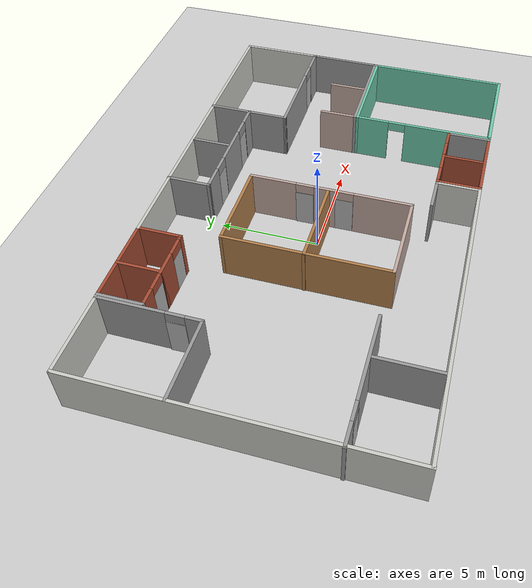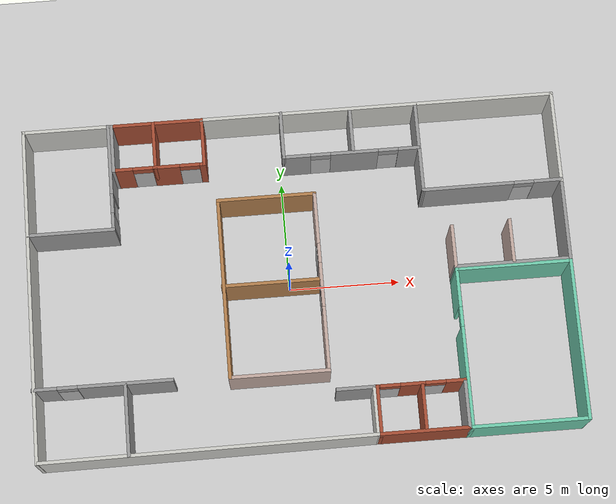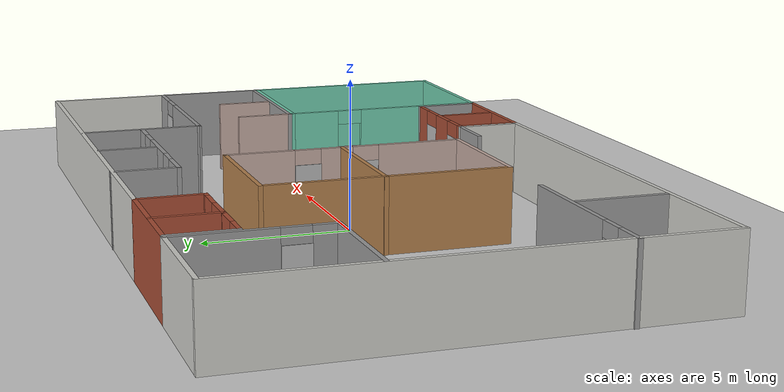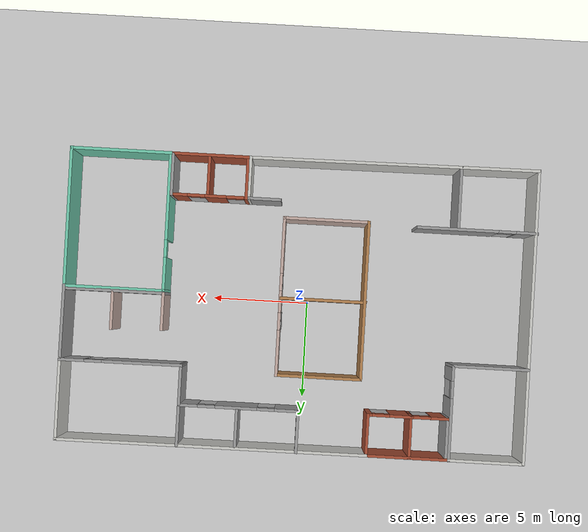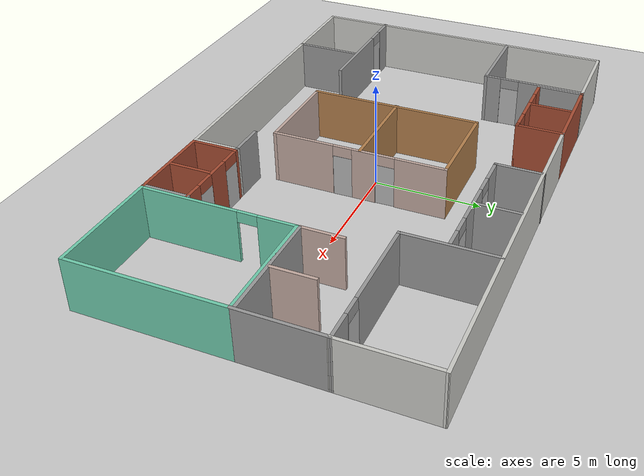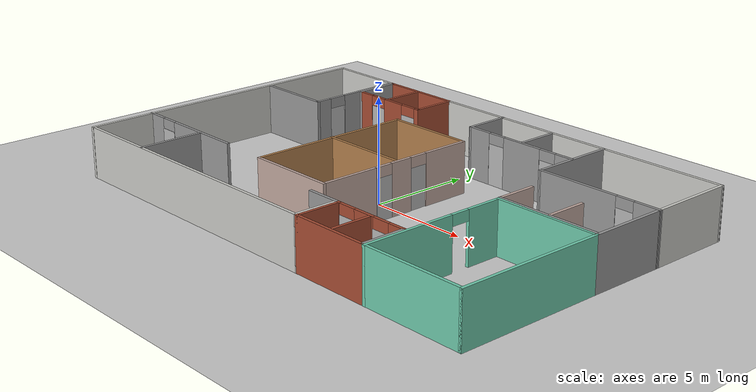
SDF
<sdf version="1.7">
 <world name="default">
  <light name="sun" type="directional">
   <pose>0 0 10 0 -0 0</pose>
   <diffuse>0.8 0.8 0.8 1</diffuse>
   <specular>0.2 0.2 0.2 1</specular>
   <attenuation>
    <range>1000</range>
    <constant>0.9</constant>
    <linear>0.01</linear>
    <quadratic>0.001</quadratic>
   </attenuation>
   <direction>-0.5 0.1 -0.9</direction>
   <spot><inner_angle>0</inner_angle><outer_angle>0</outer_angle><falloff>0</falloff></spot>
  </light>
  <model name="ground_plane">
   <static>1</static>
   <link name="link">
    <collision name="collision">
     <geometry><plane><normal>0 0 1</normal><size>100 100</size></plane></geometry>
     <surface>
      <contact><collide_bitmask>65535</collide_bitmask></contact>
      <friction><ode><mu>100</mu><mu2>50</mu2></ode></friction>
     </surface>
    </collision>
    <visual name="visual">
     <cast_shadows>0</cast_shadows>
     <geometry><plane><normal>0 0 1</normal><size>100 100</size></plane></geometry>
     <material>
      <script><uri>file://media/materials/scripts/gazebo.material</uri><name>Gazebo/Grey</name></script>
     </material>
    </visual>
   </link>
  </model>
  <gravity>0 0 -9.8</gravity>
  <magnetic_field>6e-06 2.3e-05 -4.2e-05</magnetic_field>
  <atmosphere type="adiabatic"/>
  <physics type="ode">
   <max_step_size>0.001</max_step_size>
   <real_time_factor>1</real_time_factor>
   <real_time_update_rate>1000</real_time_update_rate>
  </physics>
  <scene><ambient>0.4 0.4 0.4 1</ambient><background>0.7 0.7 0.7 1</background><shadows>1</shadows></scene>
  <spherical_coordinates>
   <surface_model>EARTH_WGS84</surface_model>
   <latitude_deg>0</latitude_deg>
   <longitude_deg>0</longitude_deg>
   <elevation>0</elevation>
   <heading_deg>0</heading_deg>
  </spherical_coordinates>
  <model name="office_building">
   <pose>0.494631 0.126876 0 0 -0 0</pose>
   <link name="Wall_1">
    <collision name="Wall_1_Collision">
     <geometry><box><size>7.25 0.15 2.5</size></box></geometry>
     <pose>0 0 1.25 0 -0 0</pose>
    </collision>
    <visual name="Wall_1_Visual">
     <pose>0 0 1.25 0 -0 0</pose>
     <geometry><box><size>7.25 0.15 2.5</size></box></geometry>
     <material>
      <script><uri>file://media/materials/scripts/gazebo.material</uri><name>Gazebo/Grey</name></script>
      <ambient>0.435294 0.796078 0.67451 1</ambient>
     </material>
     <meta><layer>0</layer></meta>
    </visual>
    <pose>12.051 -3.89015 0 0 -0 1.5708</pose>
   </link>
   <link name="Wall_10">
    <collision name="Wall_10_Collision">
     <geometry><box><size>2.25 0.15 2.5</size></box></geometry>
     <pose>0 0 1.25 0 -0 0</pose>
    </collision>
    <visual name="Wall_10_Visual">
     <pose>0 0 1.25 0 -0 0</pose>
     <geometry><box><size>2.25 0.15 2.5</size></box></geometry>
     <material>
      <script><uri>file://media/materials/scripts/gazebo.material</uri><name>Gazebo/Grey</name></script>
      <ambient>1 1 1 1</ambient>
     </material>
     <meta><layer>0</layer></meta>
    </visual>
    <pose>6.8099 -6.38677 0 0 -0 -1.5708</pose>
   </link>
   <link name="Wall_12">
    <pose>4.8849 -5.33677 0 0 -0 3.14159</pose>
    <visual name="Wall_12_Visual_0">
     <pose>-1.5468 0 1.25 0 -0 0</pose>
     <geometry><box><size>0.906408 0.15 2.5</size></box></geometry>
     <material>
      <script><uri>file://media/materials/scripts/gazebo.material</uri><name>Gazebo/Bricks</name></script>
      <ambient>1 1 1 1</ambient>
     </material>
     <meta><layer>0</layer></meta>
    </visual>
    <collision name="Wall_12_Collision_0">
     <geometry><box><size>0.906408 0.15 2.5</size></box></geometry>
     <pose>-1.5468 0 1.25 0 -0 0</pose>
    </collision>
    <visual name="Wall_12_Visual_1">
     <pose>0.357767 0 1.25 0 -0 0</pose>
     <geometry><box><size>1.10272 0.15 2.5</size></box></geometry>
     <material>
      <script><uri>file://media/materials/scripts/gazebo.material</uri><name>Gazebo/Bricks</name></script>
      <ambient>1 1 1 1</ambient>
     </material>
     <meta><layer>0</layer></meta>
    </visual>
    <collision name="Wall_12_Collision_1">
     <geometry><box><size>1.10272 0.15 2.5</size></box></geometry>
     <pose>0.357767 0 1.25 0 -0 0</pose>
    </collision>
    <visual name="Wall_12_Visual_2">
     <pose>1.90456 0 1.25 0 -0 0</pose>
     <geometry><box><size>0.190874 0.15 2.5</size></box></geometry>
     <material>
      <script><uri>file://media/materials/scripts/gazebo.material</uri><name>Gazebo/Bricks</name></script>
      <ambient>1 1 1 1</ambient>
     </material>
     <meta><layer>0</layer></meta>
    </visual>
    <collision name="Wall_12_Collision_2">
     <geometry><box><size>0.190874 0.15 2.5</size></box></geometry>
     <pose>1.90456 0 1.25 0 -0 0</pose>
    </collision>
    <visual name="Wall_12_Visual_3">
     <pose>-0.643592 0 2.25 0 -0 0</pose>
     <geometry><box><size>0.9 0.15 0.5</size></box></geometry>
     <material>
      <script><uri>file://media/materials/scripts/gazebo.material</uri><name>Gazebo/Bricks</name></script>
      <ambient>1 1 1 1</ambient>
     </material>
     <meta><layer>0</layer></meta>
    </visual>
    <collision name="Wall_12_Collision_3">
     <geometry><box><size>0.9 0.15 0.5</size></box></geometry>
     <pose>-0.643592 0 2.25 0 -0 0</pose>
    </collision>
    <visual name="Wall_12_Visual_4">
     <pose>1.35913 0 2.25 0 -0 0</pose>
     <geometry><box><size>0.9 0.15 0.5</size></box></geometry>
     <material>
      <script><uri>file://media/materials/scripts/gazebo.material</uri><name>Gazebo/Bricks</name></script>
      <ambient>1 1 1 1</ambient>
     </material>
     <meta><layer>0</layer></meta>
    </visual>
    <collision name="Wall_12_Collision_4">
     <geometry><box><size>0.9 0.15 0.5</size></box></geometry>
     <pose>1.35913 0 2.25 0 -0 0</pose>
    </collision>
   </link>
   <link name="Wall_13">
    <collision name="Wall_13_Collision">
     <geometry><box><size>2.25 0.15 2.5</size></box></geometry>
     <pose>0 0 1.25 0 -0 0</pose>
    </collision>
    <visual name="Wall_13_Visual">
     <pose>0 0 1.25 0 -0 0</pose>
     <geometry><box><size>2.25 0.15 2.5</size></box></geometry>
     <material>
      <script><uri>file://media/materials/scripts/gazebo.material</uri><name>Gazebo/Bricks</name></script>
      <ambient>1 1 1 1</ambient>
     </material>
     <meta><layer>0</layer></meta>
    </visual>
    <pose>2.9599 -6.38677 0 0 -0 -1.5708</pose>
   </link>
   <link name="Wall_14">
    <collision name="Wall_14_Collision">
     <geometry><box><size>4 0.15 2.5</size></box></geometry>
     <pose>0 0 1.25 0 -0 0</pose>
    </collision>
    <visual name="Wall_14_Visual">
     <pose>0 0 1.25 0 -0 0</pose>
     <geometry><box><size>4 0.15 2.5</size></box></geometry>
     <material>
      <script><uri>file://media/materials/scripts/gazebo.material</uri><name>Gazebo/Bricks</name></script>
      <ambient>1 1 1 1</ambient>
     </material>
     <meta><layer>0</layer></meta>
    </visual>
    <pose>4.8849 -7.43677 0 0 -0 0</pose>
   </link>
   <link name="Wall_16">
    <collision name="Wall_16_Collision">
     <geometry><box><size>2 0.15 2.5</size></box></geometry>
     <pose>0 0 1.25 0 -0 0</pose>
    </collision>
    <visual name="Wall_16_Visual">
     <pose>0 0 1.25 0 -0 0</pose>
     <geometry><box><size>2 0.15 2.5</size></box></geometry>
     <material>
      <script><uri>file://media/materials/scripts/gazebo.material</uri><name>Gazebo/Bricks</name></script>
      <ambient>1 1 1 1</ambient>
     </material>
     <meta><layer>0</layer></meta>
    </visual>
    <pose>4.93617 -6.37194 0 0 -0 -1.5708</pose>
   </link>
   <link name="Wall_18">
    <collision name="Wall_18_Collision">
     <geometry><box><size>2.25 0.15 2.5</size></box></geometry>
     <pose>0 0 1.25 0 -0 0</pose>
    </collision>
    <visual name="Wall_18_Visual">
     <pose>0 0 1.25 0 -0 0</pose>
     <geometry><box><size>2.25 0.15 2.5</size></box></geometry>
     <material>
      <script><uri>file://media/materials/scripts/gazebo.material</uri><name>Gazebo/CeilingTiled</name></script>
      <ambient>1 1 1 1</ambient>
     </material>
     <meta><layer>0</layer></meta>
    </visual>
    <pose>2.82192 -6.38677 0 0 -0 -1.5708</pose>
   </link>
   <link name="Wall_20">
    <collision name="Wall_20_Collision">
     <geometry><box><size>1.75 0.15 2.5</size></box></geometry>
     <pose>0 0 1.25 0 -0 0</pose>
    </collision>
    <visual name="Wall_20_Visual">
     <pose>0 0 1.25 0 -0 0</pose>
     <geometry><box><size>1.75 0.15 2.5</size></box></geometry>
     <material>
      <script><uri>file://media/materials/scripts/gazebo.material</uri><name>Gazebo/Grey</name></script>
      <ambient>1 1 1 1</ambient>
     </material>
     <meta><layer>0</layer></meta>
    </visual>
    <pose>2.02192 -5.33677 0 0 -0 3.14159</pose>
   </link>
   <link name="Wall_22">
    <collision name="Wall_22_Collision">
     <geometry><box><size>14.9776 0.15 2.5</size></box></geometry>
     <pose>0 0 1.25 0 -0 0</pose>
    </collision>
    <visual name="Wall_22_Visual">
     <pose>0 0 1.25 0 -0 0</pose>
     <geometry><box><size>14.9776 0.15 2.5</size></box></geometry>
     <material>
      <script><uri>file://media/materials/scripts/gazebo.material</uri><name>Gazebo/CeilingTiled</name></script>
      <ambient>1 1 1 1</ambient>
     </material>
     <meta><layer>0</layer></meta>
    </visual>
    <pose>-4.59164 -7.49395 0 0 -0 -3.13388</pose>
   </link>
   <link name="Wall_24">
    <collision name="Wall_24_Collision">
     <geometry><box><size>15.25 0.15 2.5</size></box></geometry>
     <pose>0 0 1.25 0 -0 0</pose>
    </collision>
    <visual name="Wall_24_Visual">
     <pose>0 0 1.25 0 -0 0</pose>
     <geometry><box><size>15.25 0.15 2.5</size></box></geometry>
     <material>
      <script><uri>file://media/materials/scripts/gazebo.material</uri><name>Gazebo/CeilingTiled</name></script>
      <ambient>1 1 1 1</ambient>
     </material>
     <meta><layer>0</layer></meta>
    </visual>
    <pose>-12.0166 -0.012557 0 0 -0 1.5708</pose>
   </link>
   <link name="Wall_26">
    <collision name="Wall_26_Collision">
     <geometry><box><size>4 0.15 2.5</size></box></geometry>
     <pose>0 0 1.25 0 -0 0</pose>
    </collision>
    <visual name="Wall_26_Visual">
     <pose>0 0 1.25 0 -0 0</pose>
     <geometry><box><size>4 0.15 2.5</size></box></geometry>
     <material>
      <script><uri>file://media/materials/scripts/gazebo.material</uri><name>Gazebo/CeilingTiled</name></script>
      <ambient>1 1 1 1</ambient>
     </material>
     <meta><layer>0</layer></meta>
    </visual>
    <pose>-10.0916 7.53744 0 0 -0 0</pose>
   </link>
   <link name="Wall_27">
    <pose>-8.16664 5.11244 0 0 -0 -1.5708</pose>
    <visual name="Wall_27_Visual_0">
     <pose>-0.875889 0 1.25 0 -0 0</pose>
     <geometry><box><size>3.24822 0.15 2.5</size></box></geometry>
     <material>
      <script><uri>file://media/materials/scripts/gazebo.material</uri><name>Gazebo/Grey</name></script>
      <ambient>1 1 1 1</ambient>
     </material>
     <meta><layer>0</layer></meta>
    </visual>
    <collision name="Wall_27_Collision_0">
     <geometry><box><size>3.24822 0.15 2.5</size></box></geometry>
     <pose>-0.875889 0 1.25 0 -0 0</pose>
    </collision>
    <visual name="Wall_27_Visual_1">
     <pose>2.07411 0 1.25 0 -0 0</pose>
     <geometry><box><size>0.851779 0.15 2.5</size></box></geometry>
     <material>
      <script><uri>file://media/materials/scripts/gazebo.material</uri><name>Gazebo/Grey</name></script>
      <ambient>1 1 1 1</ambient>
     </material>
     <meta><layer>0</layer></meta>
    </visual>
    <collision name="Wall_27_Collision_1">
     <geometry><box><size>0.851779 0.15 2.5</size></box></geometry>
     <pose>2.07411 0 1.25 0 -0 0</pose>
    </collision>
    <visual name="Wall_27_Visual_2">
     <pose>1.19822 0 2.25 0 -0 0</pose>
     <geometry><box><size>0.9 0.15 0.5</size></box></geometry>
     <material>
      <script><uri>file://media/materials/scripts/gazebo.material</uri><name>Gazebo/Grey</name></script>
      <ambient>1 1 1 1</ambient>
     </material>
     <meta><layer>0</layer></meta>
    </visual>
    <collision name="Wall_27_Collision_2">
     <geometry><box><size>0.9 0.15 0.5</size></box></geometry>
     <pose>1.19822 0 2.25 0 -0 0</pose>
    </collision>
   </link>
   <link name="Wall_28">
    <collision name="Wall_28_Collision">
     <geometry><box><size>4 0.15 2.5</size></box></geometry>
     <pose>0 0 1.25 0 -0 0</pose>
    </collision>
    <visual name="Wall_28_Visual">
     <pose>0 0 1.25 0 -0 0</pose>
     <geometry><box><size>4 0.15 2.5</size></box></geometry>
     <material>
      <script><uri>file://media/materials/scripts/gazebo.material</uri><name>Gazebo/Grey</name></script>
      <ambient>1 1 1 1</ambient>
     </material>
     <meta><layer>0</layer></meta>
    </visual>
    <pose>-10.0916 2.68744 0 0 -0 3.14159</pose>
   </link>
   <link name="Wall_3">
    <collision name="Wall_3_Collision">
     <geometry><box><size>5.25 0.15 2.5</size></box></geometry>
     <pose>0 0 1.25 0 -0 0</pose>
    </collision>
    <visual name="Wall_3_Visual">
     <pose>0 0 1.25 0 -0 0</pose>
     <geometry><box><size>5.25 0.15 2.5</size></box></geometry>
     <material>
      <script><uri>file://media/materials/scripts/gazebo.material</uri><name>Gazebo/Grey</name></script>
      <ambient>0.435294 0.796078 0.67451 1</ambient>
     </material>
     <meta><layer>0</layer></meta>
    </visual>
    <pose>9.50097 -0.340147 0 0 -0 3.14159</pose>
   </link>
   <link name="Wall_30">
    <pose>-9.01754 -4.33523 0 0 -0 0</pose>
    <visual name="Wall_30_Visual_0">
     <pose>-2.55533 0 1.25 0 -0 0</pose>
     <geometry><box><size>1.13933 0.15 2.5</size></box></geometry>
     <material>
      <script><uri>file://media/materials/scripts/gazebo.material</uri><name>Gazebo/Grey</name></script>
      <ambient>1 1 1 1</ambient>
     </material>
     <meta><layer>0</layer></meta>
    </visual>
    <collision name="Wall_30_Collision_0">
     <geometry><box><size>1.13933 0.15 2.5</size></box></geometry>
     <pose>-2.55533 0 1.25 0 -0 0</pose>
    </collision>
    <visual name="Wall_30_Visual_1">
     <pose>1.01967 0 1.25 0 -0 0</pose>
     <geometry><box><size>4.21066 0.15 2.5</size></box></geometry>
     <material>
      <script><uri>file://media/materials/scripts/gazebo.material</uri><name>Gazebo/Grey</name></script>
      <ambient>1 1 1 1</ambient>
     </material>
     <meta><layer>0</layer></meta>
    </visual>
    <collision name="Wall_30_Collision_1">
     <geometry><box><size>4.21066 0.15 2.5</size></box></geometry>
     <pose>1.01967 0 1.25 0 -0 0</pose>
    </collision>
    <visual name="Wall_30_Visual_2">
     <pose>-1.53567 0 2.25 0 -0 0</pose>
     <geometry><box><size>0.9 0.15 0.5</size></box></geometry>
     <material>
      <script><uri>file://media/materials/scripts/gazebo.material</uri><name>Gazebo/Grey</name></script>
      <ambient>1 1 1 1</ambient>
     </material>
     <meta><layer>0</layer></meta>
    </visual>
    <collision name="Wall_30_Collision_2">
     <geometry><box><size>0.9 0.15 0.5</size></box></geometry>
     <pose>-1.53567 0 2.25 0 -0 0</pose>
    </collision>
   </link>
   <link name="Wall_33">
    <collision name="Wall_33_Collision">
     <geometry><box><size>3.25 0.15 2.5</size></box></geometry>
     <pose>0 0 1.25 0 -0 0</pose>
    </collision>
    <visual name="Wall_33_Visual">
     <pose>0 0 1.25 0 -0 0</pose>
     <geometry><box><size>3.25 0.15 2.5</size></box></geometry>
     <material>
      <script><uri>file://media/materials/scripts/gazebo.material</uri><name>Gazebo/Grey</name></script>
      <ambient>1 1 1 1</ambient>
     </material>
     <meta><layer>0</layer></meta>
    </visual>
    <pose>-8.02259 -5.94854 0 0 -0 -1.5708</pose>
   </link>
   <link name="Wall_39">
    <collision name="Wall_39_Collision">
     <geometry><box><size>2.25 0.15 2.5</size></box></geometry>
     <pose>0 0 1.25 0 -0 0</pose>
    </collision>
    <visual name="Wall_39_Visual">
     <pose>0 0 1.25 0 -0 0</pose>
     <geometry><box><size>2.25 0.15 2.5</size></box></geometry>
     <material>
      <script><uri>file://media/materials/scripts/gazebo.material</uri><name>Gazebo/Grey</name></script>
      <ambient>1 1 1 1</ambient>
     </material>
     <meta><layer>0</layer></meta>
    </visual>
    <pose>-8.02172 6.48473 0 0 -0 -1.5708</pose>
   </link>
   <link name="Wall_43">
    <collision name="Wall_43_Collision">
     <geometry><box><size>4.25 0.15 2.5</size></box></geometry>
     <pose>0 0 1.25 0 -0 0</pose>
    </collision>
    <visual name="Wall_43_Visual">
     <pose>0 0 1.25 0 -0 0</pose>
     <geometry><box><size>4.25 0.15 2.5</size></box></geometry>
     <material>
      <script><uri>file://media/materials/scripts/gazebo.material</uri><name>Gazebo/Bricks</name></script>
      <ambient>1 1 1 1</ambient>
     </material>
     <meta><layer>0</layer></meta>
    </visual>
    <pose>-5.97172 7.53473 0 0 -0 0</pose>
   </link>
   <link name="Wall_44">
    <collision name="Wall_44_Collision">
     <geometry><box><size>2.25 0.15 2.5</size></box></geometry>
     <pose>0 0 1.25 0 -0 0</pose>
    </collision>
    <visual name="Wall_44_Visual">
     <pose>0 0 1.25 0 -0 0</pose>
     <geometry><box><size>2.25 0.15 2.5</size></box></geometry>
     <material>
      <script><uri>file://media/materials/scripts/gazebo.material</uri><name>Gazebo/Bricks</name></script>
      <ambient>1 1 1 1</ambient>
     </material>
     <meta><layer>0</layer></meta>
    </visual>
    <pose>-3.92172 6.48473 0 0 -0 -1.5708</pose>
   </link>
   <link name="Wall_45">
    <pose>-5.97172 5.43473 0 0 -0 3.14159</pose>
    <visual name="Wall_45_Visual_0">
     <pose>-1.98284 0 1.25 0 -0 0</pose>
     <geometry><box><size>0.284309 0.15 2.5</size></box></geometry>
     <material>
      <script><uri>file://media/materials/scripts/gazebo.material</uri><name>Gazebo/Bricks</name></script>
      <ambient>1 1 1 1</ambient>
     </material>
     <meta><layer>0</layer></meta>
    </visual>
    <collision name="Wall_45_Collision_0">
     <geometry><box><size>0.284309 0.15 2.5</size></box></geometry>
     <pose>-1.98284 0 1.25 0 -0 0</pose>
    </collision>
    <visual name="Wall_45_Visual_1">
     <pose>-0.329741 0 1.25 0 -0 0</pose>
     <geometry><box><size>1.2219 0.15 2.5</size></box></geometry>
     <material>
      <script><uri>file://media/materials/scripts/gazebo.material</uri><name>Gazebo/Bricks</name></script>
      <ambient>1 1 1 1</ambient>
     </material>
     <meta><layer>0</layer></meta>
    </visual>
    <collision name="Wall_45_Collision_1">
     <geometry><box><size>1.2219 0.15 2.5</size></box></geometry>
     <pose>-0.329741 0 1.25 0 -0 0</pose>
    </collision>
    <visual name="Wall_45_Visual_2">
     <pose>1.6531 0 1.25 0 -0 0</pose>
     <geometry><box><size>0.943791 0.15 2.5</size></box></geometry>
     <material>
      <script><uri>file://media/materials/scripts/gazebo.material</uri><name>Gazebo/Bricks</name></script>
      <ambient>1 1 1 1</ambient>
     </material>
     <meta><layer>0</layer></meta>
    </visual>
    <collision name="Wall_45_Collision_2">
     <geometry><box><size>0.943791 0.15 2.5</size></box></geometry>
     <pose>1.6531 0 1.25 0 -0 0</pose>
    </collision>
    <visual name="Wall_45_Visual_3">
     <pose>-1.39069 0 2.25 0 -0 0</pose>
     <geometry><box><size>0.9 0.15 0.5</size></box></geometry>
     <material>
      <script><uri>file://media/materials/scripts/gazebo.material</uri><name>Gazebo/Bricks</name></script>
      <ambient>1 1 1 1</ambient>
     </material>
     <meta><layer>0</layer></meta>
    </visual>
    <collision name="Wall_45_Collision_3">
     <geometry><box><size>0.9 0.15 0.5</size></box></geometry>
     <pose>-1.39069 0 2.25 0 -0 0</pose>
    </collision>
    <visual name="Wall_45_Visual_4">
     <pose>0.731209 0 2.25 0 -0 0</pose>
     <geometry><box><size>0.9 0.15 0.5</size></box></geometry>
     <material>
      <script><uri>file://media/materials/scripts/gazebo.material</uri><name>Gazebo/Bricks</name></script>
      <ambient>1 1 1 1</ambient>
     </material>
     <meta><layer>0</layer></meta>
    </visual>
    <collision name="Wall_45_Collision_4">
     <geometry><box><size>0.9 0.15 0.5</size></box></geometry>
     <pose>0.731209 0 2.25 0 -0 0</pose>
    </collision>
   </link>
   <link name="Wall_47">
    <collision name="Wall_47_Collision">
     <geometry><box><size>2.25 0.15 2.5</size></box></geometry>
     <pose>0 0 1.25 0 -0 0</pose>
    </collision>
    <visual name="Wall_47_Visual">
     <pose>0 0 1.25 0 -0 0</pose>
     <geometry><box><size>2.25 0.15 2.5</size></box></geometry>
     <material>
      <script><uri>file://media/materials/scripts/gazebo.material</uri><name>Gazebo/Bricks</name></script>
      <ambient>1 1 1 1</ambient>
     </material>
     <meta><layer>0</layer></meta>
    </visual>
    <pose>-6.13141 6.48473 0 0 -0 -1.5708</pose>
   </link>
   <link name="Wall_49">
    <collision name="Wall_49_Collision">
     <geometry><box><size>16.139 0.15 2.5</size></box></geometry>
     <pose>0 0 1.25 0 -0 0</pose>
    </collision>
    <visual name="Wall_49_Visual">
     <pose>0 0 1.25 0 -0 0</pose>
     <geometry><box><size>16.139 0.15 2.5</size></box></geometry>
     <material>
      <script><uri>file://media/materials/scripts/gazebo.material</uri><name>Gazebo/CeilingTiled</name></script>
      <ambient>1 1 1 1</ambient>
     </material>
     <meta><layer>0</layer></meta>
    </visual>
    <pose>4.07275 7.54749 0 0 -0 0.001596</pose>
   </link>
   <link name="Wall_5">
    <pose>6.95097 -3.89015 0 0 -0 -1.5708</pose>
    <visual name="Wall_5_Visual_0">
     <pose>-2.72629 0 1.25 0 -0 0</pose>
     <geometry><box><size>1.79742 0.15 2.5</size></box></geometry>
     <material>
      <script><uri>file://media/materials/scripts/gazebo.material</uri><name>Gazebo/Grey</name></script>
      <ambient>0.435294 0.796078 0.67451 1</ambient>
     </material>
     <meta><layer>0</layer></meta>
    </visual>
    <collision name="Wall_5_Collision_0">
     <geometry><box><size>1.79742 0.15 2.5</size></box></geometry>
     <pose>-2.72629 0 1.25 0 -0 0</pose>
    </collision>
    <visual name="Wall_5_Visual_1">
     <pose>1.34871 0 1.25 0 -0 0</pose>
     <geometry><box><size>4.55258 0.15 2.5</size></box></geometry>
     <material>
      <script><uri>file://media/materials/scripts/gazebo.material</uri><name>Gazebo/Grey</name></script>
      <ambient>0.435294 0.796078 0.67451 1</ambient>
     </material>
     <meta><layer>0</layer></meta>
    </visual>
    <collision name="Wall_5_Collision_1">
     <geometry><box><size>4.55258 0.15 2.5</size></box></geometry>
     <pose>1.34871 0 1.25 0 -0 0</pose>
    </collision>
    <visual name="Wall_5_Visual_2">
     <pose>-1.37758 0 2.25 0 -0 0</pose>
     <geometry><box><size>0.9 0.15 0.5</size></box></geometry>
     <material>
      <script><uri>file://media/materials/scripts/gazebo.material</uri><name>Gazebo/Grey</name></script>
      <ambient>0.435294 0.796078 0.67451 1</ambient>
     </material>
     <meta><layer>0</layer></meta>
    </visual>
    <collision name="Wall_5_Collision_2">
     <geometry><box><size>0.9 0.15 0.5</size></box></geometry>
     <pose>-1.37758 0 2.25 0 -0 0</pose>
    </collision>
   </link>
   <link name="Wall_50">
    <collision name="Wall_50_Collision">
     <geometry><box><size>4.25 0.15 2.5</size></box></geometry>
     <pose>0 0 1.25 0 -0 0</pose>
    </collision>
    <visual name="Wall_50_Visual">
     <pose>0 0 1.25 0 -0 0</pose>
     <geometry><box><size>4.25 0.15 2.5</size></box></geometry>
     <material>
      <script><uri>file://media/materials/scripts/gazebo.material</uri><name>Gazebo/CeilingTiled</name></script>
      <ambient>1 1 1 1</ambient>
     </material>
     <meta><layer>0</layer></meta>
    </visual>
    <pose>12.0672 5.47244 0 0 -0 -1.5708</pose>
   </link>
   <link name="Wall_51">
    <pose>8.94775 3.44749 0 0 -0 -3.1375</pose>
    <visual name="Wall_51_Visual_0">
     <pose>-2.53509 0 1.25 0 -0 0</pose>
     <geometry><box><size>1.31881 0.15 2.5</size></box></geometry>
     <material>
      <script><uri>file://media/materials/scripts/gazebo.material</uri><name>Gazebo/Grey</name></script>
      <ambient>1 1 1 1</ambient>
     </material>
     <meta><layer>0</layer></meta>
    </visual>
    <collision name="Wall_51_Collision_0">
     <geometry><box><size>1.31881 0.15 2.5</size></box></geometry>
     <pose>-2.53509 0 1.25 0 -0 0</pose>
    </collision>
    <visual name="Wall_51_Visual_1">
     <pose>1.10941 0 1.25 0 -0 0</pose>
     <geometry><box><size>4.17018 0.15 2.5</size></box></geometry>
     <material>
      <script><uri>file://media/materials/scripts/gazebo.material</uri><name>Gazebo/Grey</name></script>
      <ambient>1 1 1 1</ambient>
     </material>
     <meta><layer>0</layer></meta>
    </visual>
    <collision name="Wall_51_Collision_1">
     <geometry><box><size>4.17018 0.15 2.5</size></box></geometry>
     <pose>1.10941 0 1.25 0 -0 0</pose>
    </collision>
    <visual name="Wall_51_Visual_2">
     <pose>-1.42569 0 2.25 0 -0 0</pose>
     <geometry><box><size>0.9 0.15 0.5</size></box></geometry>
     <material>
      <script><uri>file://media/materials/scripts/gazebo.material</uri><name>Gazebo/Grey</name></script>
      <ambient>1 1 1 1</ambient>
     </material>
     <meta><layer>0</layer></meta>
    </visual>
    <collision name="Wall_51_Collision_2">
     <geometry><box><size>0.9 0.15 0.5</size></box></geometry>
     <pose>-1.42569 0 2.25 0 -0 0</pose>
    </collision>
   </link>
   <link name="Wall_52">
    <collision name="Wall_52_Collision">
     <geometry><box><size>4.25 0.15 2.5</size></box></geometry>
     <pose>0 0 1.25 0 -0 0</pose>
    </collision>
    <visual name="Wall_52_Visual">
     <pose>0 0 1.25 0 -0 0</pose>
     <geometry><box><size>4.25 0.15 2.5</size></box></geometry>
     <material>
      <script><uri>file://media/materials/scripts/gazebo.material</uri><name>Gazebo/Grey</name></script>
      <ambient>1 1 1 1</ambient>
     </material>
     <meta><layer>0</layer></meta>
    </visual>
    <pose>5.82828 5.48473 0 0 -0 1.5708</pose>
   </link>
   <link name="Wall_54">
    <collision name="Wall_54_Collision">
     <geometry><box><size>2.25 0.15 2.5</size></box></geometry>
     <pose>0 0 1.25 0 -0 0</pose>
    </collision>
    <visual name="Wall_54_Visual">
     <pose>0 0 1.25 0 -0 0</pose>
     <geometry><box><size>2.25 0.15 2.5</size></box></geometry>
     <material>
      <script><uri>file://media/materials/scripts/gazebo.material</uri><name>Gazebo/Grey</name></script>
      <ambient>1 1 1 1</ambient>
     </material>
     <meta><layer>0</layer></meta>
    </visual>
    <pose>-0.317019 6.51256 0 0 -0 -1.5708</pose>
   </link>
   <link name="Wall_55">
    <pose>2.73298 5.46256 0 0 -0 0</pose>
    <visual name="Wall_55_Visual_0">
     <pose>-2.47641 0 1.25 0 -0 0</pose>
     <geometry><box><size>1.29719 0.15 2.5</size></box></geometry>
     <material>
      <script><uri>file://media/materials/scripts/gazebo.material</uri><name>Gazebo/Grey</name></script>
      <ambient>1 1 1 1</ambient>
     </material>
     <meta><layer>0</layer></meta>
    </visual>
    <collision name="Wall_55_Collision_0">
     <geometry><box><size>1.29719 0.15 2.5</size></box></geometry>
     <pose>-2.47641 0 1.25 0 -0 0</pose>
    </collision>
    <visual name="Wall_55_Visual_1">
     <pose>0.157204 0 1.25 0 -0 0</pose>
     <geometry><box><size>2.17003 0.15 2.5</size></box></geometry>
     <material>
      <script><uri>file://media/materials/scripts/gazebo.material</uri><name>Gazebo/Grey</name></script>
      <ambient>1 1 1 1</ambient>
     </material>
     <meta><layer>0</layer></meta>
    </visual>
    <collision name="Wall_55_Collision_1">
     <geometry><box><size>2.17003 0.15 2.5</size></box></geometry>
     <pose>0.157204 0 1.25 0 -0 0</pose>
    </collision>
    <visual name="Wall_55_Visual_2">
     <pose>2.63361 0 1.25 0 -0 0</pose>
     <geometry><box><size>0.982779 0.15 2.5</size></box></geometry>
     <material>
      <script><uri>file://media/materials/scripts/gazebo.material</uri><name>Gazebo/Grey</name></script>
      <ambient>1 1 1 1</ambient>
     </material>
     <meta><layer>0</layer></meta>
    </visual>
    <collision name="Wall_55_Collision_2">
     <geometry><box><size>0.982779 0.15 2.5</size></box></geometry>
     <pose>2.63361 0 1.25 0 -0 0</pose>
    </collision>
    <visual name="Wall_55_Visual_3">
     <pose>-1.37781 0 2.25 0 -0 0</pose>
     <geometry><box><size>0.9 0.15 0.5</size></box></geometry>
     <material>
      <script><uri>file://media/materials/scripts/gazebo.material</uri><name>Gazebo/Grey</name></script>
      <ambient>1 1 1 1</ambient>
     </material>
     <meta><layer>0</layer></meta>
    </visual>
    <collision name="Wall_55_Collision_3">
     <geometry><box><size>0.9 0.15 0.5</size></box></geometry>
     <pose>-1.37781 0 2.25 0 -0 0</pose>
    </collision>
    <visual name="Wall_55_Visual_4">
     <pose>1.69222 0 2.25 0 -0 0</pose>
     <geometry><box><size>0.9 0.15 0.5</size></box></geometry>
     <material>
      <script><uri>file://media/materials/scripts/gazebo.material</uri><name>Gazebo/Grey</name></script>
      <ambient>1 1 1 1</ambient>
     </material>
     <meta><layer>0</layer></meta>
    </visual>
    <collision name="Wall_55_Collision_4">
     <geometry><box><size>0.9 0.15 0.5</size></box></geometry>
     <pose>1.69222 0 2.25 0 -0 0</pose>
    </collision>
   </link>
   <link name="Wall_57">
    <collision name="Wall_57_Collision">
     <geometry><box><size>2 0.15 2.5</size></box></geometry>
     <pose>0 0 1.25 0 -0 0</pose>
    </collision>
    <visual name="Wall_57_Visual">
     <pose>0 0 1.25 0 -0 0</pose>
     <geometry><box><size>2 0.15 2.5</size></box></geometry>
     <material>
      <script><uri>file://media/materials/scripts/gazebo.material</uri><name>Gazebo/Grey</name></script>
      <ambient>1 1 1 1</ambient>
     </material>
     <meta><layer>0</layer></meta>
    </visual>
    <pose>2.83511 6.507 0 0 -0 -1.5708</pose>
   </link>
   <link name="Wall_59">
    <collision name="Wall_59_Collision">
     <geometry><box><size>3.95043 0.15 2.5</size></box></geometry>
     <pose>0 0 1.25 0 -0 0</pose>
    </collision>
    <visual name="Wall_59_Visual">
     <pose>0 0 1.25 0 -0 0</pose>
     <geometry><box><size>3.95043 0.15 2.5</size></box></geometry>
     <material>
      <script><uri>file://media/materials/scripts/gazebo.material</uri><name>Gazebo/Grey</name></script>
      <ambient>1 1 1 1</ambient>
     </material>
     <meta><layer>0</layer></meta>
    </visual>
    <pose>12.0591 1.56005 0 0 -0 -1.57507</pose>
   </link>
   <link name="Wall_6">
    <collision name="Wall_6_Collision">
     <geometry><box><size>5.25 0.15 2.5</size></box></geometry>
     <pose>0 0 1.25 0 -0 0</pose>
    </collision>
    <visual name="Wall_6_Visual">
     <pose>0 0 1.25 0 -0 0</pose>
     <geometry><box><size>5.25 0.15 2.5</size></box></geometry>
     <material>
      <script><uri>file://media/materials/scripts/gazebo.material</uri><name>Gazebo/Grey</name></script>
      <ambient>0.435294 0.796078 0.67451 1</ambient>
     </material>
     <meta><layer>0</layer></meta>
    </visual>
    <pose>9.50097 -7.44015 0 0 -0 0</pose>
   </link>
   <link name="Wall_62">
    <collision name="Wall_62_Collision">
     <geometry><box><size>5.25 0.15 2.5</size></box></geometry>
     <pose>0 0 1.25 0 -0 0</pose>
    </collision>
    <visual name="Wall_62_Visual">
     <pose>0 0 1.25 0 -0 0</pose>
     <geometry><box><size>5.25 0.15 2.5</size></box></geometry>
     <material>
      <script><uri>file://media/materials/scripts/gazebo.material</uri><name>Gazebo/Grey</name></script>
      <ambient>1 1 1 1</ambient>
     </material>
     <meta><layer>0</layer></meta>
    </visual>
    <pose>9.48489 -0.210357 0 0 -0 0</pose>
   </link>
   <link name="Wall_64">
    <collision name="Wall_64_Collision">
     <geometry><box><size>2 0.15 2.5</size></box></geometry>
     <pose>0 0 1.25 0 -0 0</pose>
    </collision>
    <visual name="Wall_64_Visual">
     <pose>0 0 1.25 0 -0 0</pose>
     <geometry><box><size>2 0.15 2.5</size></box></geometry>
     <material>
      <script><uri>file://media/materials/scripts/gazebo.material</uri><name>Gazebo/Grey</name></script>
      <ambient>0.760784 0.662745 0.627451 1</ambient>
     </material>
     <meta><layer>0</layer></meta>
    </visual>
    <pose>6.93489 0.714643 0 0 -0 1.5708</pose>
   </link>
   <link name="Wall_66">
    <collision name="Wall_66_Collision">
     <geometry><box><size>2 0.15 2.5</size></box></geometry>
     <pose>0 0 1.25 0 -0 0</pose>
    </collision>
    <visual name="Wall_66_Visual">
     <pose>0 0 1.25 0 -0 0</pose>
     <geometry><box><size>2 0.15 2.5</size></box></geometry>
     <material>
      <script><uri>file://media/materials/scripts/gazebo.material</uri><name>Gazebo/Grey</name></script>
      <ambient>0.760784 0.662745 0.627451 1</ambient>
     </material>
     <meta><layer>0</layer></meta>
    </visual>
    <pose>9.53557 0.796918 0 0 -0 -1.5708</pose>
   </link>
   <link name="Wall_78">
    <pose>0.922733 -0.390358 0 0 -0 -1.57082</pose>
    <visual name="Wall_78_Visual_0">
     <pose>-2.92592 0 1.25 0 -0 0</pose>
     <geometry><box><size>2.39815 0.15 2.5</size></box></geometry>
     <material>
      <script><uri>file://media/materials/scripts/gazebo.material</uri><name>Gazebo/Grey</name></script>
      <ambient>0.760784 0.662745 0.627451 1</ambient>
     </material>
     <meta><layer>0</layer></meta>
    </visual>
    <collision name="Wall_78_Collision_0">
     <geometry><box><size>2.39815 0.15 2.5</size></box></geometry>
     <pose>-2.92592 0 1.25 0 -0 0</pose>
    </collision>
    <visual name="Wall_78_Visual_1">
     <pose>-0.270838 0 1.25 0 -0 0</pose>
     <geometry><box><size>1.11202 0.15 2.5</size></box></geometry>
     <material>
      <script><uri>file://media/materials/scripts/gazebo.material</uri><name>Gazebo/Grey</name></script>
      <ambient>0.760784 0.662745 0.627451 1</ambient>
     </material>
     <meta><layer>0</layer></meta>
    </visual>
    <collision name="Wall_78_Collision_1">
     <geometry><box><size>1.11202 0.15 2.5</size></box></geometry>
     <pose>-0.270838 0 1.25 0 -0 0</pose>
    </collision>
    <visual name="Wall_78_Visual_2">
     <pose>2.65509 0 1.25 0 -0 0</pose>
     <geometry><box><size>2.93983 0.15 2.5</size></box></geometry>
     <material>
      <script><uri>file://media/materials/scripts/gazebo.material</uri><name>Gazebo/Grey</name></script>
      <ambient>0.760784 0.662745 0.627451 1</ambient>
     </material>
     <meta><layer>0</layer></meta>
    </visual>
    <collision name="Wall_78_Collision_2">
     <geometry><box><size>2.93983 0.15 2.5</size></box></geometry>
     <pose>2.65509 0 1.25 0 -0 0</pose>
    </collision>
    <visual name="Wall_78_Visual_3">
     <pose>-1.27685 0 2.25 0 -0 0</pose>
     <geometry><box><size>0.9 0.15 0.5</size></box></geometry>
     <material>
      <script><uri>file://media/materials/scripts/gazebo.material</uri><name>Gazebo/Grey</name></script>
      <ambient>0.760784 0.662745 0.627451 1</ambient>
     </material>
     <meta><layer>0</layer></meta>
    </visual>
    <collision name="Wall_78_Collision_3">
     <geometry><box><size>0.9 0.15 0.5</size></box></geometry>
     <pose>-1.27685 0 2.25 0 -0 0</pose>
    </collision>
    <visual name="Wall_78_Visual_4">
     <pose>0.735174 0 2.25 0 -0 0</pose>
     <geometry><box><size>0.9 0.15 0.5</size></box></geometry>
     <material>
      <script><uri>file://media/materials/scripts/gazebo.material</uri><name>Gazebo/Grey</name></script>
      <ambient>0.760784 0.662745 0.627451 1</ambient>
     </material>
     <meta><layer>0</layer></meta>
    </visual>
    <collision name="Wall_78_Collision_4">
     <geometry><box><size>0.9 0.15 0.5</size></box></geometry>
     <pose>0.735174 0 2.25 0 -0 0</pose>
    </collision>
   </link>
   <link name="Wall_87">
    <collision name="Wall_87_Collision">
     <geometry><box><size>4.5 0.15 2.5</size></box></geometry>
     <pose>0 0 1.25 0 -0 0</pose>
    </collision>
    <visual name="Wall_87_Visual">
     <pose>0 0 1.25 0 -0 0</pose>
     <geometry><box><size>4.5 0.15 2.5</size></box></geometry>
     <material>
      <script><uri>file://media/materials/scripts/gazebo.material</uri><name>Gazebo/Wood</name></script>
      <ambient>1 1 1 1</ambient>
     </material>
     <meta><layer>0</layer></meta>
    </visual>
    <pose>-1.25218 3.65982 0 0 -0 3.14159</pose>
   </link>
   <link name="Wall_88">
    <collision name="Wall_88_Collision">
     <geometry><box><size>8.25 0.15 2.5</size></box></geometry>
     <pose>0 0 1.25 0 -0 0</pose>
    </collision>
    <visual name="Wall_88_Visual">
     <pose>0 0 1.25 0 -0 0</pose>
     <geometry><box><size>8.25 0.15 2.5</size></box></geometry>
     <material>
      <script><uri>file://media/materials/scripts/gazebo.material</uri><name>Gazebo/Wood</name></script>
      <ambient>1 1 1 1</ambient>
     </material>
     <meta><layer>0</layer></meta>
    </visual>
    <pose>-3.42727 -0.390358 0 0 -0 -1.57082</pose>
   </link>
   <link name="Wall_89">
    <collision name="Wall_89_Collision">
     <geometry><box><size>4.5 0.15 2.5</size></box></geometry>
     <pose>0 0 1.25 0 -0 0</pose>
    </collision>
    <visual name="Wall_89_Visual">
     <pose>0 0 1.25 0 -0 0</pose>
     <geometry><box><size>4.5 0.15 2.5</size></box></geometry>
     <material>
      <script><uri>file://media/materials/scripts/gazebo.material</uri><name>Gazebo/Grey</name></script>
      <ambient>0.760784 0.662745 0.627451 1</ambient>
     </material>
     <meta><layer>0</layer></meta>
    </visual>
    <pose>-1.25235 -4.44054 0 0 -0 0</pose>
   </link>
   <link name="Wall_91">
    <collision name="Wall_91_Collision">
     <geometry><box><size>4.5 0.15 2.5</size></box></geometry>
     <pose>0 0 1.25 0 -0 0</pose>
    </collision>
    <visual name="Wall_91_Visual">
     <pose>0 0 1.25 0 -0 0</pose>
     <geometry><box><size>4.5 0.15 2.5</size></box></geometry>
     <material>
      <script><uri>file://media/materials/scripts/gazebo.material</uri><name>Gazebo/Wood</name></script>
      <ambient>1 1 1 1</ambient>
     </material>
     <meta><layer>0</layer></meta>
    </visual>
    <pose>-1.28835 -0.309538 0 0 -0 0</pose>
   </link>
   <static>1</static>
  </model>
  <model name="office_doors">
   <model name="door">
    <link name="link_0">
     <visual name="visual">
      <pose>0 0 1 0 -0 0</pose>
      <geometry><box><size>0.9 0.15 2</size></box></geometry>
      <material>
       <script>
        <uri>model://door/materials/scripts</uri>
        <uri>model://door/materials/textures</uri>
        <name>door</name>
       </script>
      </material>
     </visual>
     <collision name="collision">
      <pose>0 0 1 0 -0 0</pose>
      <geometry><box><size>0.9 0.15 2</size></box></geometry>
     </collision>
    </link>
    <static>1</static>
    <pose>5.80048 -6.60884 0 0 -0 0</pose>
   </model>
   <model name="door_0">
    <link name="link_0">
     <visual name="visual">
      <pose>0 0 1 0 -0 0</pose>
      <geometry><box><size>0.9 0.15 2</size></box></geometry>
      <material>
       <script>
        <uri>model://door/materials/scripts</uri>
        <uri>model://door/materials/textures</uri>
        <name>door</name>
       </script>
      </material>
     </visual>
     <collision name="collision">
      <pose>0 0 1 0 -0 0</pose>
      <geometry><box><size>0.9 0.15 2</size></box></geometry>
     </collision>
    </link>
    <static>1</static>
    <pose>3.79676 -6.60815 0 0 -0 0</pose>
   </model>
   <model name="door_1">
    <link name="link_0">
     <visual name="visual">
      <pose>0 0 1 0 -0 0</pose>
      <geometry><box><size>0.9 0.15 2</size></box></geometry>
      <material>
       <script>
        <uri>model://door/materials/scripts</uri>
        <uri>model://door/materials/textures</uri>
        <name>door</name>
       </script>
      </material>
     </visual>
     <collision name="collision">
      <pose>0 0 1 0 -0 0</pose>
      <geometry><box><size>0.9 0.15 2</size></box></geometry>
     </collision>
    </link>
    <static>1</static>
    <pose>-10.2817 -5.61959 0 0 -0 0</pose>
   </model>
   <model name="door_2">
    <link name="link_0">
     <visual name="visual">
      <pose>0 0 1 0 -0 0</pose>
      <geometry><box><size>0.9 0.15 2</size></box></geometry>
      <material>
       <script>
        <uri>model://door/materials/scripts</uri>
        <uri>model://door/materials/textures</uri>
        <name>door</name>
       </script>
      </material>
     </visual>
     <collision name="collision">
      <pose>0 0 1 0 -0 0</pose>
      <geometry><box><size>0.9 0.15 2</size></box></geometry>
     </collision>
    </link>
    <static>1</static>
    <pose>-7.92444 2.64027 0 0 -0 1.58814</pose>
   </model>
   <model name="door_2_clone">
    <link name="link_0">
     <visual name="visual">
      <pose>0 0 1 0 -0 0</pose>
      <geometry><box><size>0.9 0.15 2</size></box></geometry>
      <material>
       <script>
        <uri>model://door/materials/scripts</uri>
        <uri>model://door/materials/textures</uri>
        <name>door</name>
       </script>
      </material>
     </visual>
     <collision name="collision">
      <pose>0 0 1 0 -0 0</pose>
      <geometry><box><size>0.9 0.15 2</size></box></geometry>
     </collision>
    </link>
    <static>1</static>
    <pose>1.16929 -0.37976 0 0 -0 1.58814</pose>
   </model>
   <model name="door_2_clone_0">
    <link name="link_0">
     <visual name="visual">
      <pose>0 0 1 0 -0 0</pose>
      <geometry><box><size>0.9 0.15 2</size></box></geometry>
      <material>
       <script>
        <uri>model://door/materials/scripts</uri>
        <uri>model://door/materials/textures</uri>
        <name>door</name>
       </script>
      </material>
     </visual>
     <collision name="collision">
      <pose>0 0 1 0 -0 0</pose>
      <geometry><box><size>0.9 0.15 2</size></box></geometry>
     </collision>
    </link>
    <static>1</static>
    <pose>1.20115 -2.38363 0 0 -0 1.58814</pose>
   </model>
   <model name="door_3">
    <link name="link_0">
     <visual name="visual">
      <pose>0 0 1 0 -0 0</pose>
      <geometry><box><size>0.9 0.15 2</size></box></geometry>
      <material>
       <script>
        <uri>model://door/materials/scripts</uri>
        <uri>model://door/materials/textures</uri>
        <name>door</name>
       </script>
      </material>
     </visual>
     <collision name="collision">
      <pose>0 0 1 0 -0 0</pose>
      <geometry><box><size>0.9 0.15 2</size></box></geometry>
     </collision>
    </link>
    <static>1</static>
    <pose>-6.43341 4.17666 0 0 -0 0</pose>
   </model>
   <model name="door_4">
    <link name="link_0">
     <visual name="visual">
      <pose>0 0 1 0 -0 0</pose>
      <geometry><box><size>0.9 0.15 2</size></box></geometry>
      <material>
       <script>
        <uri>model://door/materials/scripts</uri>
        <uri>model://door/materials/textures</uri>
        <name>door</name>
       </script>
      </material>
     </visual>
     <collision name="collision">
      <pose>0 0 1 0 -0 0</pose>
      <geometry><box><size>0.9 0.15 2</size></box></geometry>
     </collision>
    </link>
    <static>1</static>
    <pose>-4.30851 4.17192 0 0 -0 0</pose>
   </model>
   <model name="door_5">
    <link name="link_0">
     <visual name="visual">
      <pose>0 0 1 0 -0 0</pose>
      <geometry><box><size>0.9 0.15 2</size></box></geometry>
      <material>
       <script>
        <uri>model://door/materials/scripts</uri>
        <uri>model://door/materials/textures</uri>
        <name>door</name>
       </script>
      </material>
     </visual>
     <collision name="collision">
      <pose>0 0 1 0 -0 0</pose>
      <geometry><box><size>0.9 0.15 2</size></box></geometry>
     </collision>
    </link>
    <static>1</static>
    <pose>1.63116 4.19915 -0 0 -0 0</pose>
   </model>
   <model name="door_6">
    <link name="link_0">
     <visual name="visual">
      <pose>0 0 1 0 -0 0</pose>
      <geometry><box><size>0.9 0.15 2</size></box></geometry>
      <material>
       <script>
        <uri>model://door/materials/scripts</uri>
        <uri>model://door/materials/textures</uri>
        <name>door</name>
       </script>
      </material>
     </visual>
     <collision name="collision">
      <pose>0 0 1 0 -0 0</pose>
      <geometry><box><size>0.9 0.15 2</size></box></geometry>
     </collision>
    </link>
    <static>1</static>
    <pose>4.69758 4.20871 0 0 -0 0</pose>
   </model>
   <model name="door_7">
    <link name="link_0">
     <visual name="visual">
      <pose>0 0 1 0 -0 0</pose>
      <geometry><box><size>0.9 0.15 2</size></box></geometry>
      <material>
       <script>
        <uri>model://door/materials/scripts</uri>
        <uri>model://door/materials/textures</uri>
        <name>door</name>
       </script>
      </material>
     </visual>
     <collision name="collision">
      <pose>0 0 1 0 -0 0</pose>
      <geometry><box><size>0.9 0.15 2</size></box></geometry>
     </collision>
    </link>
    <static>1</static>
    <pose>10.6516 2.20326 0 0 -0 0</pose>
   </model>
   <static>0</static>
   <pose>0.217673 1.39595 0 0 -0 0</pose>
  </model>
 </world>
</sdf>
